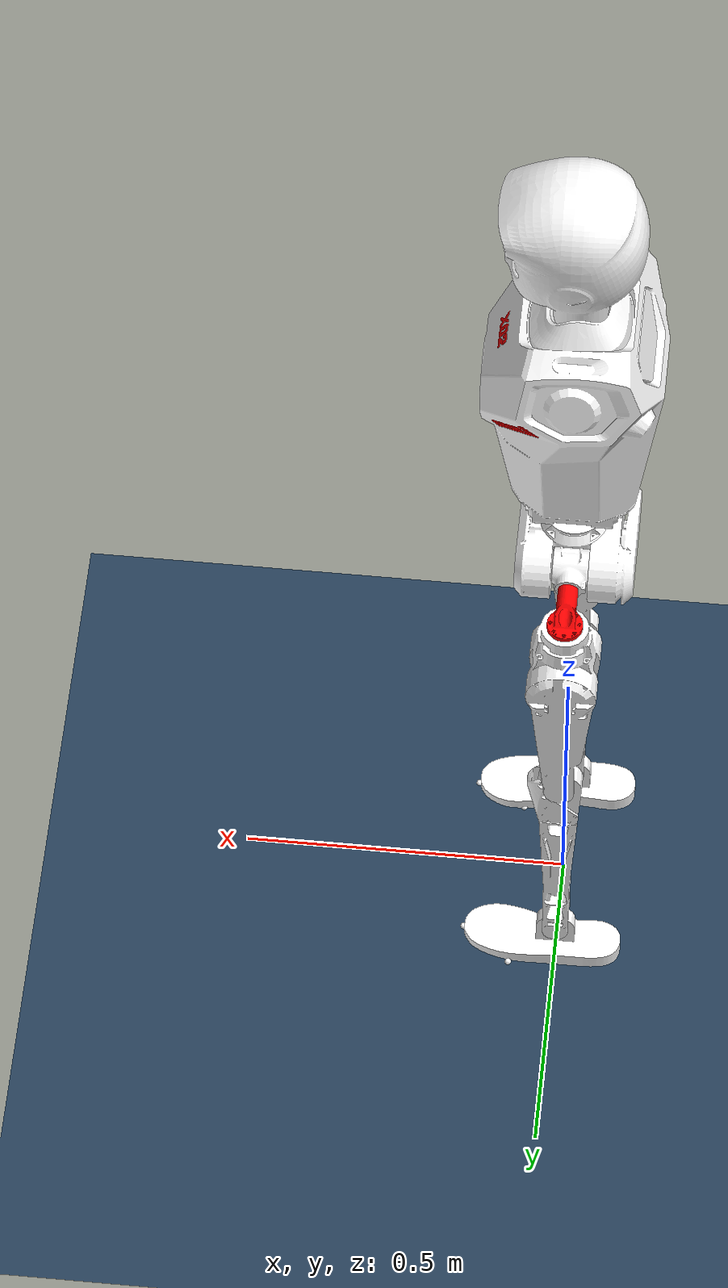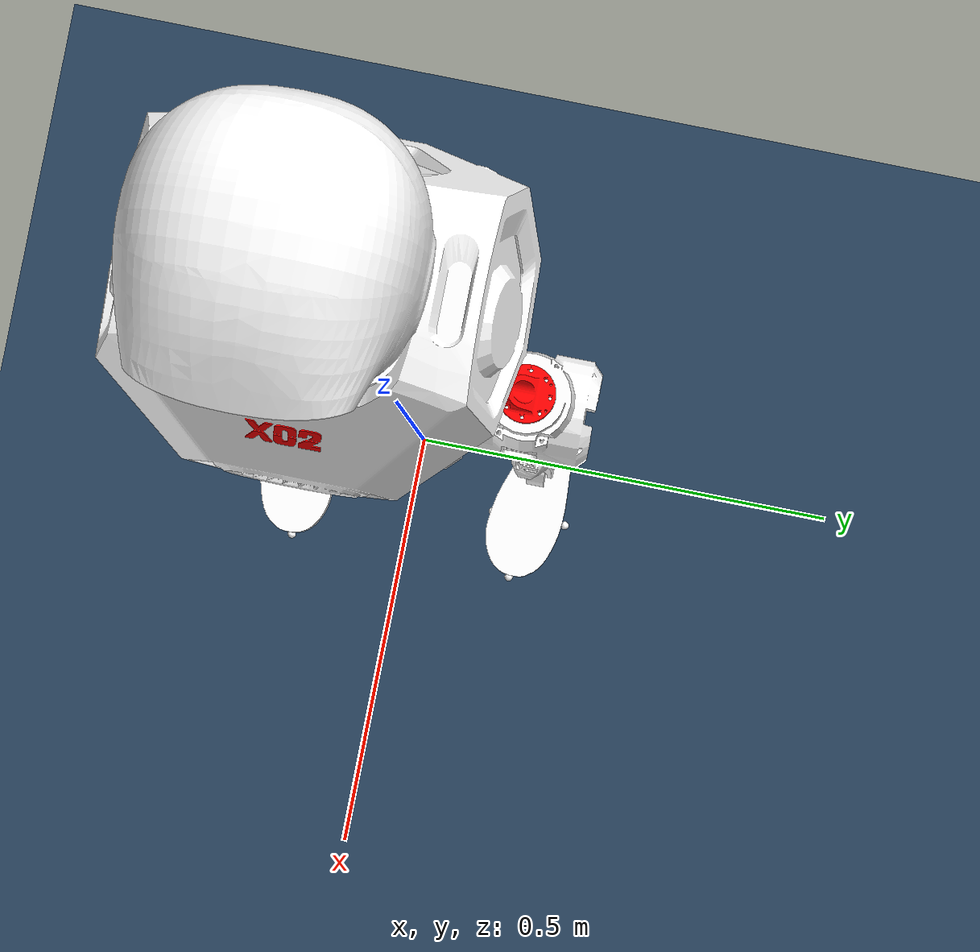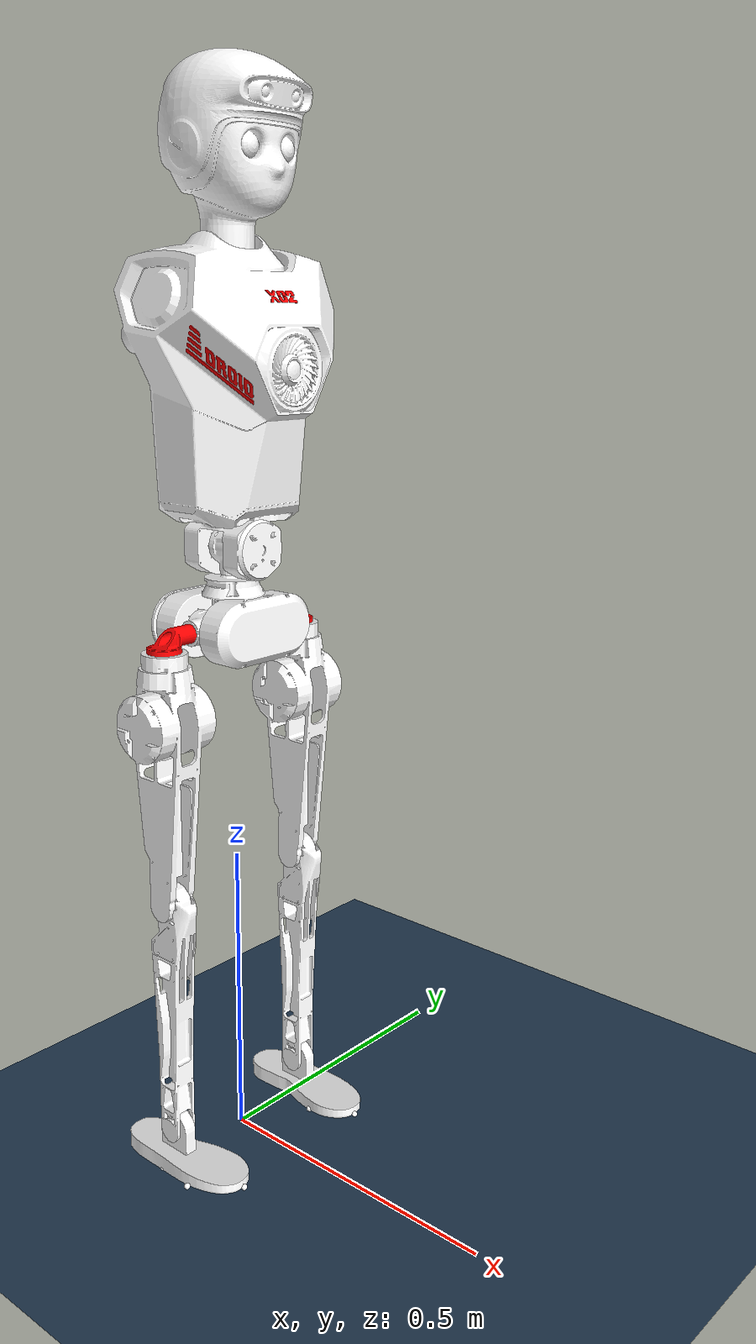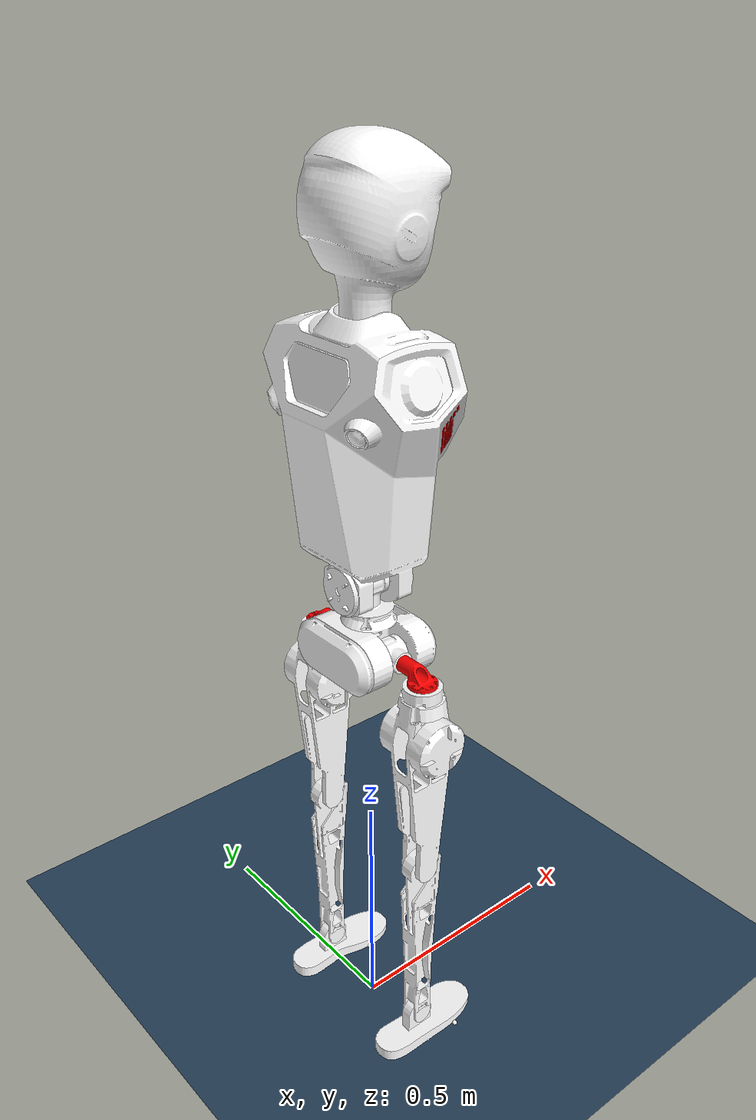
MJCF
<mujoco model="x03walk scene">
  <include file="X03.xml"/>

  <statistic center="1.0 0.7 1.5" extent="0.8"/>

  <visual>
    <headlight diffuse="0.6 0.6 0.6" ambient="0.1 0.1 0.1" specular="0.9 0.9 0.9"/>
    <rgba haze="0.15 0.25 0.35 1"/>
    <global azimuth="-140" elevation="-20"/>
  </visual>

  <asset>
    <texture type="skybox" builtin="flat" rgb1="0 0 0" rgb2="0 0 0" width="512" height="3072"/>
    <texture type="2d" name="groundplane" builtin="checker" mark="edge" rgb1="0.2 0.3 0.4" rgb2="0.1 0.2 0.3" markrgb="0.8 0.8 0.8" width="300" height="300"/>
    <material name="groundplane" texture="groundplane" texuniform="true" texrepeat="5 5" reflectance="0.2"/>
  </asset>

  <worldbody>
    <light pos="1 0 3.5" dir="0 0 -1" directional="true"/>
    <geom name="floor" size="0 0 0.05" type="plane" material="groundplane"/>
  </worldbody>
</mujoco>

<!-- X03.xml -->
<mujoco model="x03">
  <compiler angle="radian" meshdir="./meshes/"/>
  <statistic meansize="0.144785" extent="1.23314" center="0.025392 2.0634e-05 -0.245975"/>
  <default>
    <joint damping="0.1" armature="0.01" frictionloss="0.1"/>
  </default>
  <asset>
    <mesh name="pelvis_link" file="pelvis_link.STL"/>
    <mesh name="waist_yaw_link" file="waist_yaw_link.STL"/>
    <mesh name="waist_roll_link" file="waist_roll_link.STL"/>
    <mesh name="head_link" file="head_link.STL"/>
    <mesh name="L_hip_roll_link" file="L_hip_roll_link.STL"/>
    <mesh name="L_hip_pitch_link" file="L_hip_pitch_link.STL"/>
    <mesh name="L_hip_yaw_link" file="L_hip_yaw_link.STL"/>
    <mesh name="L_knee_pitch_link" file="L_knee_pitch_link.STL"/>
    <mesh name="L_ankle_pitch_link" file="L_ankle_pitch_link.STL"/>
    <mesh name="R_hip_roll_link" file="R_hip_roll_link.STL"/>
    <mesh name="R_hip_pitch_link" file="R_hip_pitch_link.STL"/>
    <mesh name="R_hip_yaw_link" file="R_hip_yaw_link.STL"/>
    <mesh name="R_knee_pitch_link" file="R_knee_pitch_link.STL"/>
    <mesh name="R_ankle_pitch_link" file="R_ankle_pitch_link.STL"/>
    <mesh name="logo_link" file="logo_link.STL"/>
  </asset>

  <worldbody>
    <body name="pelvis_link" pos="0 0 1.105">
      <inertial pos="-0.0061086 2.746e-07 -0.21231" quat="0.501334 0.501328 -0.498668 0.498663" mass="3.69" diaginertia="0.00793436 0.00584224 0.0051067"/>
      <joint name="pelvis_link" type="free" limited="false" actuatorfrclimited="false"/>
      <geom type="mesh" contype="0" conaffinity="0" group="1" density="0" rgba="1 1 1 1" mesh="pelvis_link"/>
      <geom type="mesh" rgba="1 1 1 1" mesh="pelvis_link"/>
      <site name="imu" pos="0 0 0.1"/>
      <body name="waist_yaw_link" pos="0 0 -0.133">
        <inertial pos="-0.00016709 0 0.0388053" quat="0.699253 -0.105097 -0.105097 0.699253" mass="0.431" diaginertia="0.00014283 0.000129964 0.000125516"/>
        <joint name="waist_yaw" pos="0 0 0" axis="0 0 1" range="-0.7854 0.7854" actuatorfrcrange="-72 72"/>
        <geom type="mesh" contype="0" conaffinity="0" group="1" density="0" rgba="1 1 1 1" mesh="waist_yaw_link"/>
        <body name="waist_roll_link" pos="0 0 0.043">
          <inertial pos="0.00343865 7.99726e-06 0.251213" quat="0.999933 -6.56246e-05 0.0115764 -0.000196926" mass="11.8851" diaginertia="0.350801 0.339759 0.0850882"/>
          <joint name="waist_roll" pos="0 0 0" axis="1 0 0" range="-0.4363 0.4363" actuatorfrcrange="-36 36"/>
          <geom type="mesh" contype="0" conaffinity="0" group="1" density="0" rgba="1 1 1 1" mesh="waist_roll_link"/>
          <geom pos="0 0 0.404" quat="1 0 0 0" type="mesh" contype="0" conaffinity="0" group="1" density="0" rgba="1 1 1 1" mesh="head_link"/>
          <geom pos="0 0 0.404" quat="1 0 0 0" type="mesh" rgba="1 1 1 1" mesh="head_link"/>
          <geom pos="0 0 0.09" quat="1 0 0 0" type="mesh" contype="0" conaffinity="0" group="1" density="0" rgba="1 0 0 1" mesh="logo_link"/>
          <geom pos="0 0 0.09" quat="1 0 0 0" type="mesh" rgba="1 0 0 1" mesh="logo_link"/>
        </body>
      </body>
      <body name="L_hip_roll_link" pos="0 0.05 -0.214">
        <inertial pos="-0.00016709 0.00419468 0" quat="0.568761 0.420131 -0.568761 0.420131" mass="0.231" diaginertia="0.00014283 0.000129964 0.000125516"/>
        <joint name="L_hip_roll" pos="0 0 0" axis="1 0 0" range="-1.0472 1.0472" actuatorfrcrange="-36 36"/>
        <geom type="mesh" contype="0" conaffinity="0" group="1" density="0" rgba="1 1 1 1" mesh="L_hip_roll_link"/>
        <body name="L_hip_pitch_link" pos="0 0.043 0">
          <inertial pos="-2.9363e-09 -0.02482 -0.0053157" quat="0.442691 0.551384 -0.551384 0.442691" mass="0.562" diaginertia="0.000278978 0.00026071 5.95281e-05"/>
          <joint name="L_hip_pitch" pos="0 0 0" axis="0 -1 0" range="-1.0472 1.0472" actuatorfrcrange="-72 72"/>
          <geom type="mesh" contype="0" conaffinity="0" group="1" density="0" rgba="1 0 0 1" mesh="L_hip_pitch_link"/>
          <body name="L_hip_yaw_link" pos="0 0.052 -0.0425">
            <inertial pos="0.00019541 4.55e-06 -0.12907" quat="0.999997 -0.000194826 0.00227513 -0.000107456" mass="2.324" diaginertia="0.0277449 0.0270123 0.00334395"/>
            <joint name="L_hip_yaw" pos="0 0 0" axis="0 0 1" range="-1.0472 1.0472" actuatorfrcrange="-24 24"/>
            <geom type="mesh" contype="0" conaffinity="0" group="1" density="0" rgba="1 1 1 1" mesh="L_hip_yaw_link"/>
            <geom type="mesh" rgba="1 1 1 1" mesh="L_hip_yaw_link"/>
            <body name="L_knee_pitch_link" pos="0 0 -0.3875">
              <inertial pos="0.00263046 -0.00011593 -0.163315" quat="0.708443 -0.00879397 -0.00969898 0.705647" mass="0.757" diaginertia="0.0107637 0.0106315 0.00033207"/>
              <joint name="L_knee_pitch" pos="0 0 0" axis="0 -1 0" range="-2.3736 0" actuatorfrcrange="-93.6 93.6"/>
              <geom type="mesh" contype="0" conaffinity="0" group="1" density="0" rgba="1 1 1 1" mesh="L_knee_pitch_link"/>
              <geom type="mesh" rgba="1 1 1 1" mesh="L_knee_pitch_link"/>
              <body name="L_ankle_pitch_link" pos="0 0 -0.4">
                <inertial pos="0.0399383 -0.00195001 -0.0762997" quat="0 0.705556 0 0.708654" mass="0.465" diaginertia="0.00260004 0.00215 0.000549961"/>
                <joint name="L_ankle_pitch" pos="0 0 0" axis="0 -1 0" range="-1.0472 1.0472" actuatorfrcrange="-64.8 64.8"/>
                <geom type="mesh" contype="0" conaffinity="0" group="1" density="0" rgba="1 1 1 1" mesh="L_ankle_pitch_link"/>
                <geom size="0.005" pos="-0.105 0 -0.072" rgba="1 1 1 1"/>
                <geom size="0.005" pos="0.145 -0.01 -0.05" rgba="1 1 1 1"/>
                <geom size="0.005" pos="0.07 0.045 -0.056" rgba="1 1 1 1"/>
                <geom size="0.005" pos="0.07 -0.045 -0.056" rgba="1 1 1 1"/>
                <geom size="0.005" pos="0 0.035 -0.062" rgba="1 1 1 1"/>
                <geom size="0.005" pos="0 -0.03 -0.062" rgba="1 1 1 1"/>
                <geom size="0.005" pos="-0.05 0.035 -0.067" rgba="1 1 1 1"/>
                <geom size="0.005" pos="-0.05 -0.03 -0.067" rgba="1 1 1 1"/>
              </body>
            </body>
          </body>
        </body>
      </body>
      <body name="R_hip_roll_link" pos="0 -0.05 -0.214">
        <inertial pos="-0.00010806 -0.00529873 0" quat="0.420131 0.568761 -0.420131 0.568761" mass="0.231" diaginertia="0.00014283 0.000129964 0.000125516"/>
        <joint name="R_hip_roll" pos="0 0 0" axis="-1 0 0" range="-1.0472 1.0472" actuatorfrcrange="-36 36"/>
        <geom type="mesh" contype="0" conaffinity="0" group="1" density="0" rgba="1 1 1 1" mesh="R_hip_roll_link"/>
        <body name="R_hip_pitch_link" pos="0 -0.043 0">
          <inertial pos="-2.9363e-09 -0.02482 -0.0053157" quat="0.551383 0.442693 -0.442693 0.551383" mass="0.562" diaginertia="0.000278977 0.0002607 5.95328e-05"/>
          <joint name="R_hip_pitch" pos="0 0 0" axis="0 -1 0" range="-1.0472 1.0472" actuatorfrcrange="-72 72"/>
          <geom type="mesh" contype="0" conaffinity="0" group="1" density="0" rgba="1 0 0 1" mesh="R_hip_pitch_link"/>
          <body name="R_hip_yaw_link" pos="0 -0.052 -0.0425">
            <inertial pos="0.00019541 4.55e-06 -0.12457" quat="0.999997 0.000194826 -0.00227513 -0.000107456" mass="2.324" diaginertia="0.0277449 0.0270123 0.00334395"/>
            <joint name="R_hip_yaw" pos="0 0 0" axis="0 0 -1" range="-1.0472 1.0472" actuatorfrcrange="-24 24"/>
            <geom type="mesh" contype="0" conaffinity="0" group="1" density="0" rgba="1 1 1 1" mesh="R_hip_yaw_link"/>
            <geom type="mesh" rgba="1 1 1 1" mesh="R_hip_yaw_link"/>
            <body name="R_knee_pitch_link" pos="0 0 -0.3875">
              <inertial pos="0.00263046 -0.00011593 -0.163315" quat="0.705647 -0.00969898 -0.00879397 0.708443" mass="0.757" diaginertia="0.0107637 0.0106315 0.00033207"/>
              <joint name="R_knee_pitch" pos="0 0 0" axis="0 -1 0" range="-2.3736 0" actuatorfrcrange="-93.6 93.6"/>
              <geom type="mesh" contype="0" conaffinity="0" group="1" density="0" rgba="1 1 1 1" mesh="R_knee_pitch_link"/>
              <geom type="mesh" rgba="1 1 1 1" mesh="R_knee_pitch_link"/>
              <body name="R_ankle_pitch_link" pos="0 0 -0.4">
                <inertial pos="0.0399383 -0.00195001 -0.0762997" quat="0 0.705556 0 0.708654" mass="0.465" diaginertia="0.00260004 0.00215 0.000549961"/>
                <joint name="R_ankle_pitch" pos="0 0 0" axis="0 -1 0" range="-1.0472 1.0472" actuatorfrcrange="-64.8 64.8"/>
                <geom type="mesh" contype="0" conaffinity="0" group="1" density="0" rgba="1 1 1 1" mesh="R_ankle_pitch_link"/>
                <geom size="0.005" pos="-0.105 0 -0.072" rgba="1 1 1 1"/>
                <geom size="0.005" pos="0.145 0.01 -0.05" rgba="1 1 1 1"/>
                <geom size="0.005" pos="0.07 0.045 -0.056" rgba="1 1 1 1"/>
                <geom size="0.005" pos="0.07 -0.045 -0.056" rgba="1 1 1 1"/>
                <geom size="0.005" pos="0 -0.035 -0.062" rgba="1 1 1 1"/>
                <geom size="0.005" pos="0 0.03 -0.062" rgba="1 1 1 1"/>
                <geom size="0.005" pos="-0.05 -0.035 -0.067" rgba="1 1 1 1"/>
                <geom size="0.005" pos="-0.05 0.03 -0.067" rgba="1 1 1 1"/>
              </body>
            </body>
          </body>
        </body>
      </body>
    </body>
  </worldbody>
  <actuator>
    <motor name="jwy" joint="waist_yaw"      />
    <motor name="jwr" joint="waist_roll"     />

    <motor name="jsL" joint="L_hip_roll"      />
    <motor name="jhL" joint="L_hip_pitch"     />
    <motor name="juL" joint="L_hip_yaw"       />
    <motor name="jkL" joint="L_knee_pitch"    />
    <motor name="jFL" joint="L_ankle_pitch"   />

    <motor name="jsR" joint="R_hip_roll"      />
    <motor name="jhR" joint="R_hip_pitch"     />
    <motor name="juR" joint="R_hip_yaw"       />
    <motor name="jkR" joint="R_knee_pitch"    />
    <motor name="jFR" joint="R_ankle_pitch"   />
  </actuator>
  <sensor>
    <!-- 身体的的姿态 -->
    <gyro          name="gyro"    site='imu' noise='0.005' cutoff='34.9'/>
    <accelerometer name="acc"     site='imu' noise='0.005' cutoff='157'/>
    <framequat     name='bq'      objtype='site' noise='0.001' objname='imu'/>
    <framelinvel   name="blv"  objtype='site' objname='imu'/>
  </sensor>
</mujoco>
